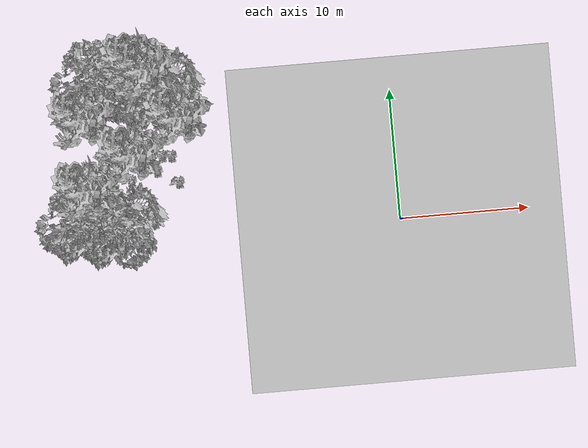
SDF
<sdf version="1.7">
 <world name="default">
  <model name="ground_plane">
   <static>1</static>
   <link name="link">
    <collision name="collision">
     <pose>-50 0 0 0 -0 0</pose>
     <geometry><plane><normal>0 0 1</normal><size>80 80</size></plane></geometry>
     <surface><contact><ode><min_depth>0.01</min_depth><max_vel>0</max_vel></ode></contact></surface>
    </collision>
    <visual name="grass">
     <cast_shadows>0</cast_shadows>
     <geometry>
      <mesh>
       <scale>0.46714285714285714 0.46714285714285714 0.1</scale>
       <uri>file://grass_plane/meshes/grass_plane.dae</uri>
      </mesh>
     </geometry>
    </visual>
   </link>
  </model>
  <model name="Tree 25">
   <static>1</static>
   <pose>-20.08611443008469 6.891712089928589 0 1.57079 -0 0</pose>
   <link name="link">
    <collision name="collision">
     <geometry><mesh><scale>3.5 5 3.5</scale><uri>model://tree_9/meshes/tree_9.obj</uri></mesh></geometry>
    </collision>
    <visual name="visual">
     <geometry><mesh><scale>3.5 5 3.5</scale><uri>model://tree_9/meshes/tree_9.obj</uri></mesh></geometry>
    </visual>
   </link>
  </model>
  <model name="Tree 60">
   <static>1</static>
   <pose>-19.291188854689093 13.661127846640504 0 1.57079 -0 0</pose>
   <link name="link">
    <collision name="collision">
     <geometry><mesh><scale>3.5 5 3.5</scale><uri>model://tree_9/meshes/tree_9.obj</uri></mesh></geometry>
    </collision>
    <visual name="visual">
     <geometry><mesh><scale>3.5 5 3.5</scale><uri>model://tree_9/meshes/tree_9.obj</uri></mesh></geometry>
    </visual>
   </link>
  </model>
  <model name="Tree 76">
   <static>1</static>
   <pose>-23.67141649242255 4.522166834923311 0 1.57079 -0 0</pose>
   <link name="link">
    <collision name="collision">
     <geometry><mesh><scale>3.5 5 3.5</scale><uri>model://tree_9/meshes/tree_9.obj</uri></mesh></geometry>
    </collision>
    <visual name="visual">
     <geometry><mesh><scale>3.5 5 3.5</scale><uri>model://tree_9/meshes/tree_9.obj</uri></mesh></geometry>
    </visual>
   </link>
  </model>
  <model name="Tree 160">
   <static>1</static>
   <pose>-17.843598221884402 11.265007415587824 0 1.57079 -0 0</pose>
   <link name="link">
    <collision name="collision">
     <geometry><mesh><scale>3.5 5 3.5</scale><uri>model://tree_2/meshes/tree_2.obj</uri></mesh></geometry>
    </collision>
    <visual name="visual">
     <geometry><mesh><scale>3.5 5 3.5</scale><uri>model://tree_2/meshes/tree_2.obj</uri></mesh></geometry>
    </visual>
   </link>
  </model>
  <model name="Tree 255">
   <static>1</static>
   <pose>-16.421172757613785 9.380473727855346 0 1.57079 -0 0</pose>
   <link name="link">
    <collision name="collision">
     <geometry><mesh><scale>3.5 5 3.5</scale><uri>model://tree_9/meshes/tree_9.obj</uri></mesh></geometry>
    </collision>
    <visual name="visual">
     <geometry><mesh><scale>3.5 5 3.5</scale><uri>model://tree_9/meshes/tree_9.obj</uri></mesh></geometry>
    </visual>
   </link>
  </model>
  <model name="Tree 357">
   <static>1</static>
   <pose>-23.518339180630473 9.789560722533452 0 1.57079 -0 0</pose>
   <link name="link">
    <collision name="collision">
     <geometry><mesh><scale>3.5 5 3.5</scale><uri>model://tree_9/meshes/tree_9.obj</uri></mesh></geometry>
    </collision>
    <visual name="visual">
     <geometry><mesh><scale>3.5 5 3.5</scale><uri>model://tree_9/meshes/tree_9.obj</uri></mesh></geometry>
    </visual>
   </link>
  </model>
  <model name="Tree 392">
   <static>1</static>
   <pose>-21.907167250330673 12.469024388874807 0 1.57079 -0 0</pose>
   <link name="link">
    <collision name="collision">
     <geometry><mesh><scale>3.5 5 3.5</scale><uri>model://tree_2/meshes/tree_2.obj</uri></mesh></geometry>
    </collision>
    <visual name="visual">
     <geometry><mesh><scale>3.5 5 3.5</scale><uri>model://tree_2/meshes/tree_2.obj</uri></mesh></geometry>
    </visual>
   </link>
  </model>
  <model name="Tree 460">
   <static>1</static>
   <pose>-21.488821200920434 1.3096635132256012 0 1.57079 -0 0</pose>
   <link name="link">
    <collision name="collision">
     <geometry><mesh><scale>3.5 5 3.5</scale><uri>model://tree_2/meshes/tree_2.obj</uri></mesh></geometry>
    </collision>
    <visual name="visual">
     <geometry><mesh><scale>3.5 5 3.5</scale><uri>model://tree_2/meshes/tree_2.obj</uri></mesh></geometry>
    </visual>
   </link>
  </model>
  <model name="Tree 547">
   <static>1</static>
   <pose>-23.865533954823796 1.858568228842742 0 1.57079 -0 0</pose>
   <link name="link">
    <collision name="collision">
     <geometry><mesh><scale>3.5 5 3.5</scale><uri>model://tree_2/meshes/tree_2.obj</uri></mesh></geometry>
    </collision>
    <visual name="visual">
     <geometry><mesh><scale>3.5 5 3.5</scale><uri>model://tree_2/meshes/tree_2.obj</uri></mesh></geometry>
    </visual>
   </link>
  </model>
  <model name="Tree 634">
   <static>1</static>
   <pose>-18.629000389787844 13.093374763270063 0 1.57079 -0 0</pose>
   <link name="link">
    <collision name="collision">
     <geometry><mesh><scale>3.5 5 3.5</scale><uri>model://tree_9/meshes/tree_9.obj</uri></mesh></geometry>
    </collision>
    <visual name="visual">
     <geometry><mesh><scale>3.5 5 3.5</scale><uri>model://tree_9/meshes/tree_9.obj</uri></mesh></geometry>
    </visual>
   </link>
  </model>
  <model name="Bush 19">
   <static>1</static>
   <pose>-18.64053379584843 5.248080997077892 0 1.57079 -0 0</pose>
   <link name="link">
    <collision name="collision">
     <geometry><mesh><scale>2 2 2</scale><uri>model://bush_2/meshes/bush_2.obj</uri></mesh></geometry>
     <surface><contact><collide_without_contact>false</collide_without_contact></contact></surface>
    </collision>
    <visual name="visual">
     <geometry><mesh><scale>2 2 2</scale><uri>model://bush_2/meshes/bush_2.obj</uri></mesh></geometry>
    </visual>
   </link>
  </model>
  <model name="Bush 44">
   <static>1</static>
   <pose>-17.446006290414992 6.331666466652514 0 1.57079 -0 0</pose>
   <link name="link">
    <collision name="collision">
     <geometry><mesh><scale>2 2 2</scale><uri>model://bush_2/meshes/bush_2.obj</uri></mesh></geometry>
     <surface><contact><collide_without_contact>false</collide_without_contact></contact></surface>
    </collision>
    <visual name="visual">
     <geometry><mesh><scale>2 2 2</scale><uri>model://bush_2/meshes/bush_2.obj</uri></mesh></geometry>
    </visual>
   </link>
  </model>
  <model name="Bush 118">
   <static>1</static>
   <pose>-20.705372450332582 4.638686292045207 0 1.57079 -0 0</pose>
   <link name="link">
    <collision name="collision">
     <geometry><mesh><scale>2 2 2</scale><uri>model://bush_2/meshes/bush_2.obj</uri></mesh></geometry>
     <surface><contact><collide_without_contact>false</collide_without_contact></contact></surface>
    </collision>
    <visual name="visual">
     <geometry><mesh><scale>2 2 2</scale><uri>model://bush_2/meshes/bush_2.obj</uri></mesh></geometry>
    </visual>
   </link>
  </model>
  <model name="Bush 160">
   <static>1</static>
   <pose>-20.64702987562916 7.4711386594456926 0 1.57079 -0 0</pose>
   <link name="link">
    <collision name="collision">
     <geometry><mesh><scale>2 2 2</scale><uri>model://bush_2/meshes/bush_2.obj</uri></mesh></geometry>
     <surface><contact><collide_without_contact>false</collide_without_contact></contact></surface>
    </collision>
    <visual name="visual">
     <geometry><mesh><scale>2 2 2</scale><uri>model://bush_2/meshes/bush_2.obj</uri></mesh></geometry>
    </visual>
   </link>
  </model>
  <model name="Bush 246">
   <static>1</static>
   <pose>-23.820414042946876 8.727331850285893 0 1.57079 -0 0</pose>
   <link name="link">
    <collision name="collision">
     <geometry><mesh><scale>2 2 2</scale><uri>model://bush_2/meshes/bush_2.obj</uri></mesh></geometry>
     <surface><contact><collide_without_contact>false</collide_without_contact></contact></surface>
    </collision>
    <visual name="visual">
     <geometry><mesh><scale>2 2 2</scale><uri>model://bush_2/meshes/bush_2.obj</uri></mesh></geometry>
    </visual>
   </link>
  </model>
  <model name="Bush 313">
   <static>1</static>
   <pose>-17.013571464290287 4.249967479843733 0 1.57079 -0 0</pose>
   <link name="link">
    <collision name="collision">
     <geometry><mesh><scale>2 2 2</scale><uri>model://bush_2/meshes/bush_2.obj</uri></mesh></geometry>
     <surface><contact><collide_without_contact>false</collide_without_contact></contact></surface>
    </collision>
    <visual name="visual">
     <geometry><mesh><scale>2 2 2</scale><uri>model://bush_2/meshes/bush_2.obj</uri></mesh></geometry>
    </visual>
   </link>
  </model>
  <model name="Bush 345">
   <static>1</static>
   <pose>-23.680632436510265 2.0516748680135777 0 1.57079 -0 0</pose>
   <link name="link">
    <collision name="collision">
     <geometry><mesh><scale>2 2 2</scale><uri>model://bush_5/meshes/bush_5.obj</uri></mesh></geometry>
     <surface><contact><collide_without_contact>false</collide_without_contact></contact></surface>
    </collision>
    <visual name="visual">
     <geometry><mesh><scale>2 2 2</scale><uri>model://bush_5/meshes/bush_5.obj</uri></mesh></geometry>
    </visual>
   </link>
  </model>
  <model name="Bush 359">
   <static>1</static>
   <pose>-20.900200736602486 3.1716453305311703 0 1.57079 -0 0</pose>
   <link name="link">
    <collision name="collision">
     <geometry><mesh><scale>2 2 2</scale><uri>model://bush_0/meshes/bush_0.obj</uri></mesh></geometry>
     <surface><contact><collide_without_contact>false</collide_without_contact></contact></surface>
    </collision>
    <visual name="visual">
     <geometry><mesh><scale>2 2 2</scale><uri>model://bush_0/meshes/bush_0.obj</uri></mesh></geometry>
    </visual>
   </link>
  </model>
  <model name="Bush 369">
   <static>1</static>
   <pose>-18.17569944246475 6.395290266136314 0 1.57079 -0 0</pose>
   <link name="link">
    <collision name="collision">
     <geometry><mesh><scale>2 2 2</scale><uri>model://bush_2/meshes/bush_2.obj</uri></mesh></geometry>
     <surface><contact><collide_without_contact>false</collide_without_contact></contact></surface>
    </collision>
    <visual name="visual">
     <geometry><mesh><scale>2 2 2</scale><uri>model://bush_2/meshes/bush_2.obj</uri></mesh></geometry>
    </visual>
   </link>
  </model>
  <model name="Bush 391">
   <static>1</static>
   <pose>-17.226765313645362 8.248933799591434 0 1.57079 -0 0</pose>
   <link name="link">
    <collision name="collision">
     <geometry><mesh><scale>2 2 2</scale><uri>model://bush_1/meshes/bush_1.obj</uri></mesh></geometry>
     <surface><contact><collide_without_contact>false</collide_without_contact></contact></surface>
    </collision>
    <visual name="visual">
     <geometry><mesh><scale>2 2 2</scale><uri>model://bush_1/meshes/bush_1.obj</uri></mesh></geometry>
    </visual>
   </link>
  </model>
  <model name="Bush 435">
   <static>1</static>
   <pose>-23.230658636468448 5.344331297296691 0 1.57079 -0 0</pose>
   <link name="link">
    <collision name="collision">
     <geometry><mesh><scale>2 2 2</scale><uri>model://bush_2/meshes/bush_2.obj</uri></mesh></geometry>
     <surface><contact><collide_without_contact>false</collide_without_contact></contact></surface>
    </collision>
    <visual name="visual">
     <geometry><mesh><scale>2 2 2</scale><uri>model://bush_2/meshes/bush_2.obj</uri></mesh></geometry>
    </visual>
   </link>
  </model>
  <model name="Bush 464">
   <static>1</static>
   <pose>-19.47596164983855 12.100811762965066 0 1.57079 -0 0</pose>
   <link name="link">
    <collision name="collision">
     <geometry><mesh><scale>2 2 2</scale><uri>model://bush_2/meshes/bush_2.obj</uri></mesh></geometry>
     <surface><contact><collide_without_contact>false</collide_without_contact></contact></surface>
    </collision>
    <visual name="visual">
     <geometry><mesh><scale>2 2 2</scale><uri>model://bush_2/meshes/bush_2.obj</uri></mesh></geometry>
    </visual>
   </link>
  </model>
  <model name="Bush 513">
   <static>1</static>
   <pose>-22.375906635543227 6.344476032396649 0 1.57079 -0 0</pose>
   <link name="link">
    <collision name="collision">
     <geometry><mesh><scale>2 2 2</scale><uri>model://bush_1/meshes/bush_1.obj</uri></mesh></geometry>
     <surface><contact><collide_without_contact>false</collide_without_contact></contact></surface>
    </collision>
    <visual name="visual">
     <geometry><mesh><scale>2 2 2</scale><uri>model://bush_1/meshes/bush_1.obj</uri></mesh></geometry>
    </visual>
   </link>
  </model>
 </world>
</sdf>
